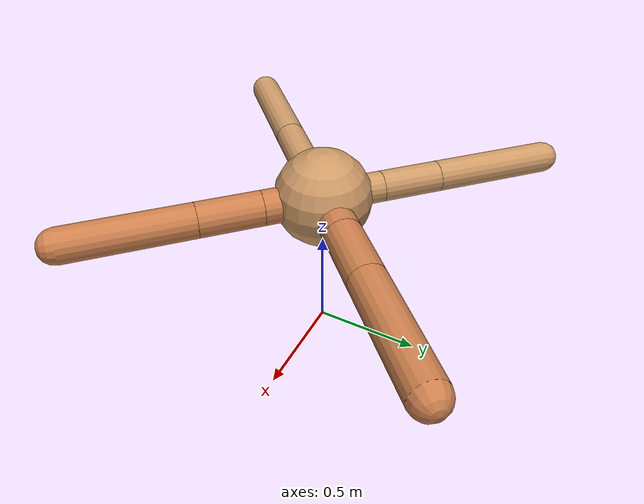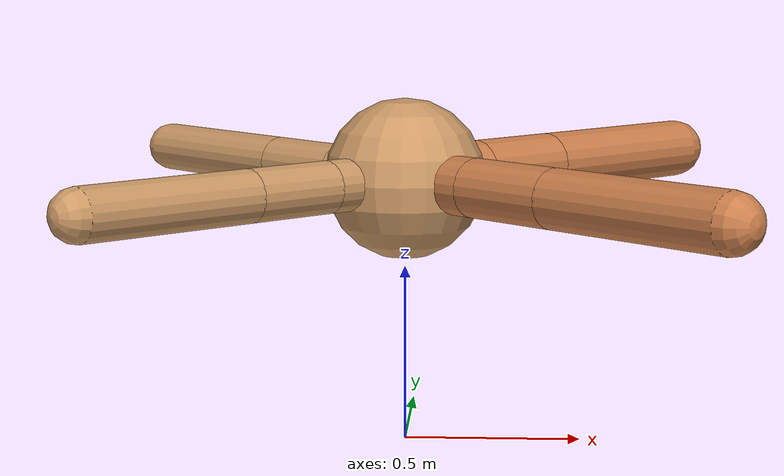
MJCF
<?xml version="1.0" ?>
<mujoco model="ant">

	<compiler angle="degree" coordinate="local" inertiafromgeom="true"/>

	<option integrator="RK4" timestep="0.01"/>

	<custom>

		<numeric data="0.0 0.0 0.55 1.0 0.0 0.0 0.0 0.0 1.0 0.0 -1.0 0.0 -1.0 0.0 1.0" name="init_qpos"/>

	</custom>

	<default>

		<joint armature="1" damping="1" limited="true"/>

		<geom conaffinity="0" condim="3" density="5.0" friction="1.5 0.1 0.1" margin="0.01" rgba="0.8 0.6 0.4 1"/>

	</default>

	<worldbody>

		<body name="torso" pos="0 0 0.75">

			<geom name="torso_geom" pos="0 0 0" size="0.22703421874968086" type="sphere"/>

			<!--joint armature="0" damping="0" limited="false" margin="0.01" name="root" pos="0 0 0" type="free"/-->

			<body name="front_left_leg" pos="0 0 0">

				<geom fromto="0 0 0 0.2 0.2 0" name="aux_1_geom" size="0.08712466923975166" type="capsule" rgba=".8 .5 .3 1"/>

				<body name="aux_1" pos="0.2 0.2 0">

					<joint axis="0 0 1" name="hip_1" pos="0.0 0.0 0.0" range="-40 40" type="hinge"/>

					<geom fromto="0 0 0 0.2061493408107989 0.2061493408107989 0" name="left_leg_geom" size="0.08712466923975166" type="capsule" rgba=".8 .5 .3 1"/>

					<body pos="0.2061493408107989 0.2061493408107989 0" name="front_left_foot">

						<joint axis="-1 1 0" name="ankle_1" pos="0.0 0.0 0.0" range="30 100" type="hinge"/>

						<geom fromto="0 0 0 0.4122986816215978 0.4122986816215978 0" name="left_ankle_geom" size="0.08712466923975166" type="capsule" rgba=".8 .5 .3 1"/>

					</body>

				</body>

			</body>

			<body name="front_right_leg" pos="0 0 0">

				<geom fromto="0 0 0 -0.2 0.2 0" name="aux_2_geom" size="0.0725136318006234" type="capsule"/>

				<body name="aux_2" pos="-0.2 0.2 0">

					<joint axis="0 0 1" name="hip_2" pos="0.0 0.0 0.0" range="-40 40" type="hinge"/>

					<geom fromto="0 0 0 -0.19810890041287074 0.19810890041287074 0" name="right_leg_geom" size="0.0725136318006234" type="capsule"/>

					<body pos="-0.19810890041287074 0.19810890041287074 0" name="front_right_foot">

						<joint axis="1 1 0" name="ankle_2" pos="0.0 0.0 0.0" range="-100 -30" type="hinge"/>

						<geom fromto="0 0 0 -0.3962178008257415 0.3962178008257415 0" name="right_ankle_geom" size="0.0725136318006234" type="capsule"/>

					</body>

				</body>

			</body>

			<body name="left_back_leg" pos="0 0 0">

				<geom fromto="0 0 0 -0.2 -0.2 0" name="aux_3_geom" size="0.07261380214191625" type="capsule"/>

				<body name="aux_3" pos="-0.2 -0.2 0">

					<joint axis="0 0 1" name="hip_3" pos="0.0 0.0 0.0" range="-40 40" type="hinge"/>

					<geom fromto="0 0 0 -0.18841854680495546 -0.18841854680495546 0" name="back_leg_geom" size="0.07261380214191625" type="capsule"/>

					<body pos="-0.18841854680495546 -0.18841854680495546 0" name="left_back_foot">

						<joint axis="-1 1 0" name="ankle_3" pos="0.0 0.0 0.0" range="-100 -30" type="hinge"/>

						<geom fromto="0 0 0 -0.3768370936099109 -0.3768370936099109 0" name="third_ankle_geom" size="0.07261380214191625" type="capsule"/>

					</body>

				</body>

			</body>

			<body name="right_back_leg" pos="0 0 0">

				<geom fromto="0 0 0 0.2 -0.2 0" name="aux_4_geom" size="0.08171057066786164" type="capsule" rgba=".8 .5 .3 1"/>

				<body name="aux_4" pos="0.2 -0.2 0">

					<joint axis="0 0 1" name="hip_4" pos="0.0 0.0 0.0" range="-40 40" type="hinge"/>

					<geom fromto="0 0 0 0.20821303385282827 -0.20821303385282827 0" name="rightback_leg_geom" size="0.08171057066786164" type="capsule" rgba=".8 .5 .3 1"/>

					<body pos="0.20821303385282827 -0.20821303385282827 0" name="right_back_foot">

						<joint axis="1 1 0" name="ankle_4" pos="0.0 0.0 0.0" range="30 100" type="hinge"/>

						<geom fromto="0 0 0 0.41642606770565654 -0.41642606770565654 0" name="fourth_ankle_geom" size="0.08171057066786164" type="capsule" rgba=".8 .5 .3 1"/>

					</body>

				</body>

			</body>

		</body>

	</worldbody>

	<actuator>

		<motor ctrllimited="true" ctrlrange="-1.0 1.0" joint="hip_4" gear="150"/>

		<motor ctrllimited="true" ctrlrange="-1.0 1.0" joint="ankle_4" gear="150"/>

		<motor ctrllimited="true" ctrlrange="-1.0 1.0" joint="hip_1" gear="150"/>

		<motor ctrllimited="true" ctrlrange="-1.0 1.0" joint="ankle_1" gear="150"/>

		<motor ctrllimited="true" ctrlrange="-1.0 1.0" joint="hip_2" gear="150"/>

		<motor ctrllimited="true" ctrlrange="-1.0 1.0" joint="ankle_2" gear="150"/>

		<motor ctrllimited="true" ctrlrange="-1.0 1.0" joint="hip_3" gear="150"/>

		<motor ctrllimited="true" ctrlrange="-1.0 1.0" joint="ankle_3" gear="150"/>

	</actuator>

</mujoco>
